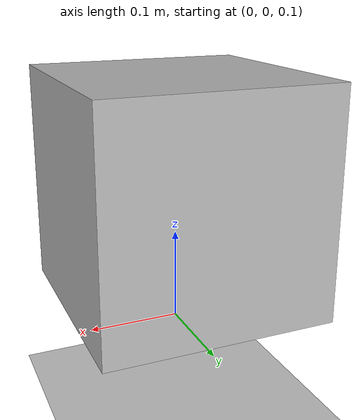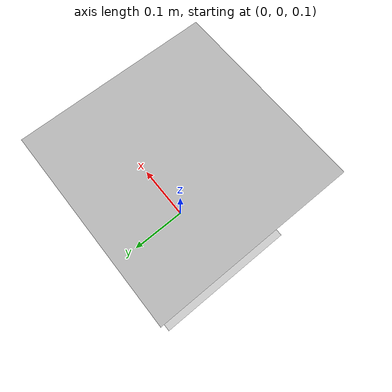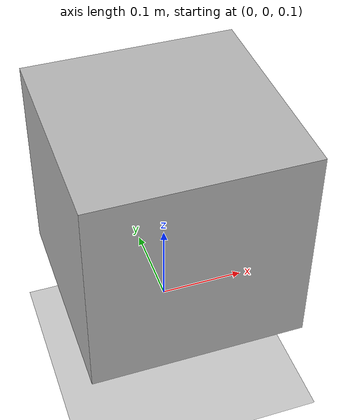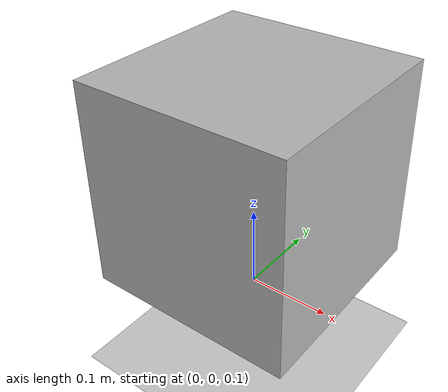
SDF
<?xml version="1.0" encoding="UTF-8"?>
<!--
	Space Robotics Challenge (2)
	NASA-JSC
	Copyright (c) 2020, All Rights Reserved
	Unauthorized distribution strictly prohibited

  Test World Description
-->
<sdf version='1.6'>
  <world name='default'>
    <gravity>0 0 -1.62</gravity>

    <include>
      <uri>model://sun</uri>
    </include>

    <magnetic_field>6e-06 2.3e-05 -4.2e-05</magnetic_field>
    <atmosphere type='adiabatic'/>

    <spherical_coordinates>
      <surface_model>EARTH_WGS84</surface_model>
      <latitude_deg>0</latitude_deg>
      <longitude_deg>0</longitude_deg>
      <elevation>0</elevation>
      <heading_deg>0</heading_deg>
    </spherical_coordinates>

    <physics name='default' default='1' type='ode'>
      <max_step_size>0.01</max_step_size>
      <real_time_factor>1</real_time_factor>
      <real_time_update_rate>100</real_time_update_rate>
      <max_contacts>5</max_contacts>
      <ode>
        <solver>
          <type>quick</type>
          <iters>70</iters>
        </solver>
      </ode>
    </physics>

    <scene>
      <ambient>0 0 0 1</ambient>
      <background>0 0 0 1</background>
      <origin_visual>0</origin_visual>
      <grid>true</grid>
    </scene>

    <gui fullscreen='0'>
      <camera name='user_camera'>
        <pose frame=''>50 -20 20 0 0.5 2.5</pose>
        <view_controller>orbit</view_controller>
        <projection_type>perspective</projection_type>
      </camera>
    </gui>

    <include>
      <uri>model://ground_plane</uri>
    </include>

    <model name='charging_box'>
      <pose frame=''>0 0 0.25 0 -0 0</pose>
      <link name='link'>
        <visual name='visual'>
          <geometry>
            <box>
              <size>0.25 0.25 0.25</size>
            </box>
          </geometry>
        </visual>
        <self_collide>0</self_collide>
        <enable_wind>0</enable_wind>
        <kinematic>0</kinematic>
        <collision name='collision'>
          <geometry>
            <box>
              <size>0.25 0.25 0.25</size>
            </box>
          </geometry>
          <max_contacts>10</max_contacts>
        </collision>
      </link>
    </model>

  </world>
</sdf>
